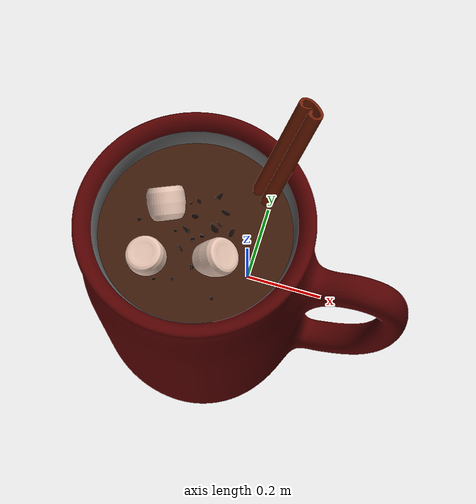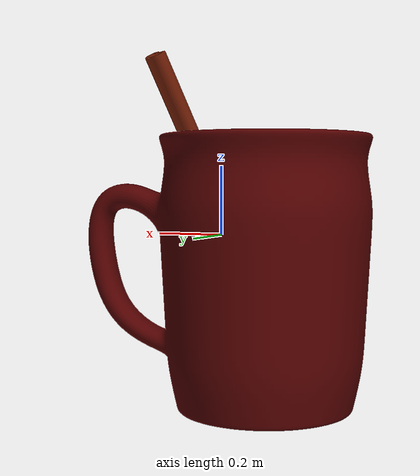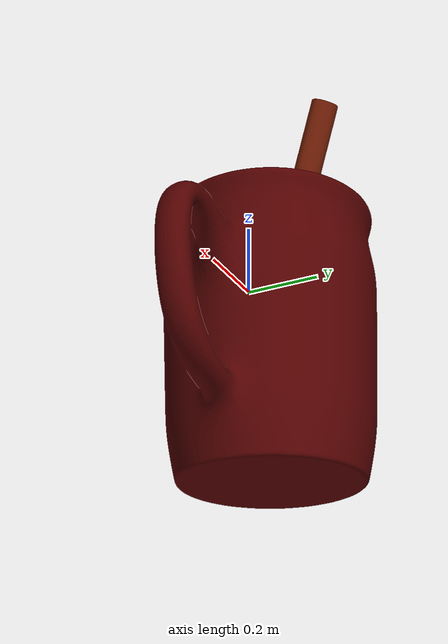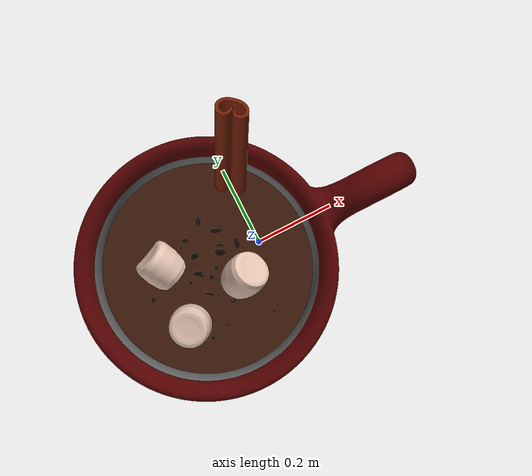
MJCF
<mujoco model="hot_chocolate">
  <asset>
  <texture file="visual/ceramic.png" name="tex-hot_chocolate" type="2d" />
  <material name="hot_chocolate" reflectance="0.5" texrepeat="1 1" texture="tex-hot_chocolate" texuniform="false" />
  <mesh file="visual/model_normalized_0.obj" name="model_normalized_0_vis" scale="1.0 1.0 1.0" /><mesh file="visual/model_normalized_1.obj" name="model_normalized_1_vis" scale="1.0 1.0 1.0" /><mesh file="visual/model_normalized_2.obj" name="model_normalized_2_vis" scale="1.0 1.0 1.0" /><mesh file="visual/model_normalized_3.obj" name="model_normalized_3_vis" scale="1.0 1.0 1.0" /><mesh file="visual/model_normalized_4.obj" name="model_normalized_4_vis" scale="1.0 1.0 1.0" /><mesh file="visual/model_normalized_5.obj" name="model_normalized_5_vis" scale="1.0 1.0 1.0" /><mesh file="collision/model_normalized_collision_22.obj" name="model_normalized_collision_22._coll" scale="1.0 1.0 1.0" /><mesh file="collision/model_normalized_collision_23.obj" name="model_normalized_collision_23._coll" scale="1.0 1.0 1.0" /><mesh file="collision/model_normalized_collision_21.obj" name="model_normalized_collision_21._coll" scale="1.0 1.0 1.0" /><mesh file="collision/model_normalized_collision_20.obj" name="model_normalized_collision_20._coll" scale="1.0 1.0 1.0" /><mesh file="collision/model_normalized_collision_24.obj" name="model_normalized_collision_24._coll" scale="1.0 1.0 1.0" /><mesh file="collision/model_normalized_collision_30.obj" name="model_normalized_collision_30._coll" scale="1.0 1.0 1.0" /><mesh file="collision/model_normalized_collision_18.obj" name="model_normalized_collision_18._coll" scale="1.0 1.0 1.0" /><mesh file="collision/model_normalized_collision_19.obj" name="model_normalized_collision_19._coll" scale="1.0 1.0 1.0" /><mesh file="collision/model_normalized_collision_31.obj" name="model_normalized_collision_31._coll" scale="1.0 1.0 1.0" /><mesh file="collision/model_normalized_collision_25.obj" name="model_normalized_collision_25._coll" scale="1.0 1.0 1.0" /><mesh file="collision/model_normalized_collision_27.obj" name="model_normalized_collision_27._coll" scale="1.0 1.0 1.0" /><mesh file="collision/model_normalized_collision_26.obj" name="model_normalized_collision_26._coll" scale="1.0 1.0 1.0" /><mesh file="collision/model_normalized_collision_9.obj" name="model_normalized_collision_9._coll" scale="1.0 1.0 1.0" /><mesh file="collision/model_normalized_collision_8.obj" name="model_normalized_collision_8._coll" scale="1.0 1.0 1.0" /><mesh file="collision/model_normalized_collision_6.obj" name="model_normalized_collision_6._coll" scale="1.0 1.0 1.0" /><mesh file="collision/model_normalized_collision_7.obj" name="model_normalized_collision_7._coll" scale="1.0 1.0 1.0" /><mesh file="collision/model_normalized_collision_5.obj" name="model_normalized_collision_5._coll" scale="1.0 1.0 1.0" /><mesh file="collision/model_normalized_collision_4.obj" name="model_normalized_collision_4._coll" scale="1.0 1.0 1.0" /><mesh file="collision/model_normalized_collision_0.obj" name="model_normalized_collision_0._coll" scale="1.0 1.0 1.0" /><mesh file="collision/model_normalized_collision_1.obj" name="model_normalized_collision_1._coll" scale="1.0 1.0 1.0" /><mesh file="collision/model_normalized_collision_3.obj" name="model_normalized_collision_3._coll" scale="1.0 1.0 1.0" /><mesh file="collision/model_normalized_collision_2.obj" name="model_normalized_collision_2._coll" scale="1.0 1.0 1.0" /><mesh file="collision/model_normalized_collision_17.obj" name="model_normalized_collision_17._coll" scale="1.0 1.0 1.0" /><mesh file="collision/model_normalized_collision_16.obj" name="model_normalized_collision_16._coll" scale="1.0 1.0 1.0" /><mesh file="collision/model_normalized_collision_28.obj" name="model_normalized_collision_28._coll" scale="1.0 1.0 1.0" /><mesh file="collision/model_normalized_collision_14.obj" name="model_normalized_collision_14._coll" scale="1.0 1.0 1.0" /><mesh file="collision/model_normalized_collision_15.obj" name="model_normalized_collision_15._coll" scale="1.0 1.0 1.0" /><mesh file="collision/model_normalized_collision_29.obj" name="model_normalized_collision_29._coll" scale="1.0 1.0 1.0" /><mesh file="collision/model_normalized_collision_11.obj" name="model_normalized_collision_11._coll" scale="1.0 1.0 1.0" /><mesh file="collision/model_normalized_collision_10.obj" name="model_normalized_collision_10._coll" scale="1.0 1.0 1.0" /><mesh file="collision/model_normalized_collision_12.obj" name="model_normalized_collision_12._coll" scale="1.0 1.0 1.0" /><mesh file="collision/model_normalized_collision_13.obj" name="model_normalized_collision_13._coll" scale="1.0 1.0 1.0" /><material name="material_0" specular="0.4000000000000001" shininess="0.001" rgba="0.05882353 0.01568627 0.00000000 1.0" /><material name="material_1" specular="0.4000000000000001" shininess="0.001" rgba="0.89411765 0.76470588 0.69411765 1.0" /><material name="material_2" specular="0.4000000000000001" shininess="0.001" rgba="0.44705882 0.11372549 0.01960784 1.0" /><material name="material_3" specular="0.4000000000000001" shininess="0.001" rgba="0.23529412 0.09803922 0.03921569 1.0" /><material name="material_4" specular="0.4000000000000001" shininess="0.001" rgba="0.40000000 0.40000000 0.40000000 1.0" /><material name="material_5" specular="0.4000000000000001" shininess="0.001" rgba="0.32549020 0.00000000 0.00000000 1.0" /></asset>
  <worldbody>
    <body>
      <body name="object">
      <geom solimp="0.998 0.998 0.001" solref="0.001 1" density="100" friction="0.95 0.3 0.1" type="mesh" mesh="model_normalized_0_vis" conaffinity="0" contype="0" group="1" material="material_5" /><geom solimp="0.998 0.998 0.001" solref="0.001 1" density="100" friction="0.95 0.3 0.1" type="mesh" mesh="model_normalized_1_vis" conaffinity="0" contype="0" group="1" material="material_4" /><geom solimp="0.998 0.998 0.001" solref="0.001 1" density="100" friction="0.95 0.3 0.1" type="mesh" mesh="model_normalized_2_vis" conaffinity="0" contype="0" group="1" material="material_3" /><geom solimp="0.998 0.998 0.001" solref="0.001 1" density="100" friction="0.95 0.3 0.1" type="mesh" mesh="model_normalized_3_vis" conaffinity="0" contype="0" group="1" material="material_2" /><geom solimp="0.998 0.998 0.001" solref="0.001 1" density="100" friction="0.95 0.3 0.1" type="mesh" mesh="model_normalized_4_vis" conaffinity="0" contype="0" group="1" material="material_1" /><geom solimp="0.998 0.998 0.001" solref="0.001 1" density="100" friction="0.95 0.3 0.1" type="mesh" mesh="model_normalized_5_vis" conaffinity="0" contype="0" group="1" material="material_0" /><geom solimp="0.998 0.998 0.001" solref="0.001 1" density="100" friction="0.95 0.3 0.1" type="mesh" mesh="model_normalized_collision_22._coll" group="0" rgba="0.8 0.8 0.8 0.0" /><geom solimp="0.998 0.998 0.001" solref="0.001 1" density="100" friction="0.95 0.3 0.1" type="mesh" mesh="model_normalized_collision_23._coll" group="0" rgba="0.8 0.8 0.8 0.0" /><geom solimp="0.998 0.998 0.001" solref="0.001 1" density="100" friction="0.95 0.3 0.1" type="mesh" mesh="model_normalized_collision_21._coll" group="0" rgba="0.8 0.8 0.8 0.0" /><geom solimp="0.998 0.998 0.001" solref="0.001 1" density="100" friction="0.95 0.3 0.1" type="mesh" mesh="model_normalized_collision_20._coll" group="0" rgba="0.8 0.8 0.8 0.0" /><geom solimp="0.998 0.998 0.001" solref="0.001 1" density="100" friction="0.95 0.3 0.1" type="mesh" mesh="model_normalized_collision_24._coll" group="0" rgba="0.8 0.8 0.8 0.0" /><geom solimp="0.998 0.998 0.001" solref="0.001 1" density="100" friction="0.95 0.3 0.1" type="mesh" mesh="model_normalized_collision_30._coll" group="0" rgba="0.8 0.8 0.8 0.0" /><geom solimp="0.998 0.998 0.001" solref="0.001 1" density="100" friction="0.95 0.3 0.1" type="mesh" mesh="model_normalized_collision_18._coll" group="0" rgba="0.8 0.8 0.8 0.0" /><geom solimp="0.998 0.998 0.001" solref="0.001 1" density="100" friction="0.95 0.3 0.1" type="mesh" mesh="model_normalized_collision_19._coll" group="0" rgba="0.8 0.8 0.8 0.0" /><geom solimp="0.998 0.998 0.001" solref="0.001 1" density="100" friction="0.95 0.3 0.1" type="mesh" mesh="model_normalized_collision_31._coll" group="0" rgba="0.8 0.8 0.8 0.0" /><geom solimp="0.998 0.998 0.001" solref="0.001 1" density="100" friction="0.95 0.3 0.1" type="mesh" mesh="model_normalized_collision_25._coll" group="0" rgba="0.8 0.8 0.8 0.0" /><geom solimp="0.998 0.998 0.001" solref="0.001 1" density="100" friction="0.95 0.3 0.1" type="mesh" mesh="model_normalized_collision_27._coll" group="0" rgba="0.8 0.8 0.8 0.0" /><geom solimp="0.998 0.998 0.001" solref="0.001 1" density="100" friction="0.95 0.3 0.1" type="mesh" mesh="model_normalized_collision_26._coll" group="0" rgba="0.8 0.8 0.8 0.0" /><geom solimp="0.998 0.998 0.001" solref="0.001 1" density="100" friction="0.95 0.3 0.1" type="mesh" mesh="model_normalized_collision_9._coll" group="0" rgba="0.8 0.8 0.8 0.0" /><geom solimp="0.998 0.998 0.001" solref="0.001 1" density="100" friction="0.95 0.3 0.1" type="mesh" mesh="model_normalized_collision_8._coll" group="0" rgba="0.8 0.8 0.8 0.0" /><geom solimp="0.998 0.998 0.001" solref="0.001 1" density="100" friction="0.95 0.3 0.1" type="mesh" mesh="model_normalized_collision_6._coll" group="0" rgba="0.8 0.8 0.8 0.0" /><geom solimp="0.998 0.998 0.001" solref="0.001 1" density="100" friction="0.95 0.3 0.1" type="mesh" mesh="model_normalized_collision_7._coll" group="0" rgba="0.8 0.8 0.8 0.0" /><geom solimp="0.998 0.998 0.001" solref="0.001 1" density="100" friction="0.95 0.3 0.1" type="mesh" mesh="model_normalized_collision_5._coll" group="0" rgba="0.8 0.8 0.8 0.0" /><geom solimp="0.998 0.998 0.001" solref="0.001 1" density="100" friction="0.95 0.3 0.1" type="mesh" mesh="model_normalized_collision_4._coll" group="0" rgba="0.8 0.8 0.8 0.0" /><geom solimp="0.998 0.998 0.001" solref="0.001 1" density="100" friction="0.95 0.3 0.1" type="mesh" mesh="model_normalized_collision_0._coll" group="0" rgba="0.8 0.8 0.8 0.0" /><geom solimp="0.998 0.998 0.001" solref="0.001 1" density="100" friction="0.95 0.3 0.1" type="mesh" mesh="model_normalized_collision_1._coll" group="0" rgba="0.8 0.8 0.8 0.0" /><geom solimp="0.998 0.998 0.001" solref="0.001 1" density="100" friction="0.95 0.3 0.1" type="mesh" mesh="model_normalized_collision_3._coll" group="0" rgba="0.8 0.8 0.8 0.0" /><geom solimp="0.998 0.998 0.001" solref="0.001 1" density="100" friction="0.95 0.3 0.1" type="mesh" mesh="model_normalized_collision_2._coll" group="0" rgba="0.8 0.8 0.8 0.0" /><geom solimp="0.998 0.998 0.001" solref="0.001 1" density="100" friction="0.95 0.3 0.1" type="mesh" mesh="model_normalized_collision_17._coll" group="0" rgba="0.8 0.8 0.8 0.0" /><geom solimp="0.998 0.998 0.001" solref="0.001 1" density="100" friction="0.95 0.3 0.1" type="mesh" mesh="model_normalized_collision_16._coll" group="0" rgba="0.8 0.8 0.8 0.0" /><geom solimp="0.998 0.998 0.001" solref="0.001 1" density="100" friction="0.95 0.3 0.1" type="mesh" mesh="model_normalized_collision_28._coll" group="0" rgba="0.8 0.8 0.8 0.0" /><geom solimp="0.998 0.998 0.001" solref="0.001 1" density="100" friction="0.95 0.3 0.1" type="mesh" mesh="model_normalized_collision_14._coll" group="0" rgba="0.8 0.8 0.8 0.0" /><geom solimp="0.998 0.998 0.001" solref="0.001 1" density="100" friction="0.95 0.3 0.1" type="mesh" mesh="model_normalized_collision_15._coll" group="0" rgba="0.8 0.8 0.8 0.0" /><geom solimp="0.998 0.998 0.001" solref="0.001 1" density="100" friction="0.95 0.3 0.1" type="mesh" mesh="model_normalized_collision_29._coll" group="0" rgba="0.8 0.8 0.8 0.0" /><geom solimp="0.998 0.998 0.001" solref="0.001 1" density="100" friction="0.95 0.3 0.1" type="mesh" mesh="model_normalized_collision_11._coll" group="0" rgba="0.8 0.8 0.8 0.0" /><geom solimp="0.998 0.998 0.001" solref="0.001 1" density="100" friction="0.95 0.3 0.1" type="mesh" mesh="model_normalized_collision_10._coll" group="0" rgba="0.8 0.8 0.8 0.0" /><geom solimp="0.998 0.998 0.001" solref="0.001 1" density="100" friction="0.95 0.3 0.1" type="mesh" mesh="model_normalized_collision_12._coll" group="0" rgba="0.8 0.8 0.8 0.0" /><geom solimp="0.998 0.998 0.001" solref="0.001 1" density="100" friction="0.95 0.3 0.1" type="mesh" mesh="model_normalized_collision_13._coll" group="0" rgba="0.8 0.8 0.8 0.0" /></body>
      <site rgba="0 0 0 0" size="0.005" pos="0.0024331849115677984 -0.00026348235908746354 -0.5075757568789547" name="bottom_site" />
      <site rgba="0 0 0 0" size="0.005" pos="0.0024331849115677984 -0.00026348235908746354 0.5075757760410295" name="top_site" />
      <site rgba="0 0 0 0" size="0.005" pos="0.4494028905912987 0.3103425841697962 9.581037407890847e-09" name="horizontal_radius_site" />
    </body>
  </worldbody>
</mujoco>
